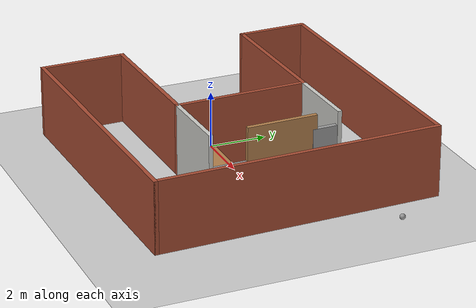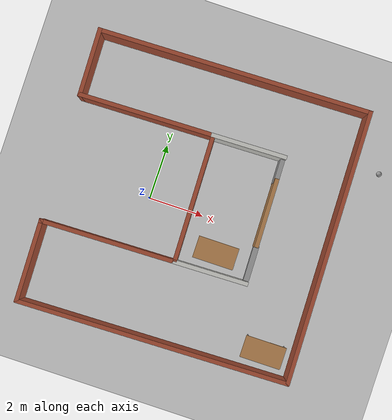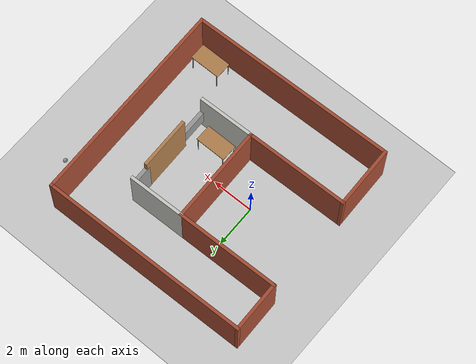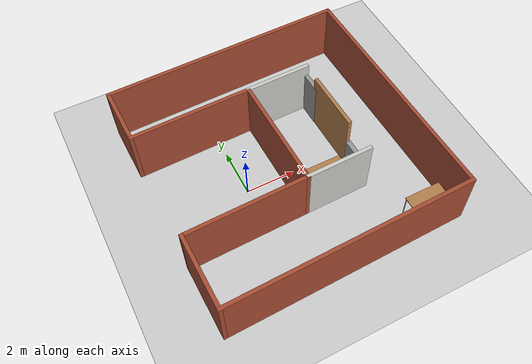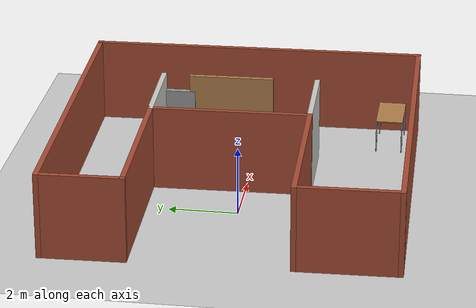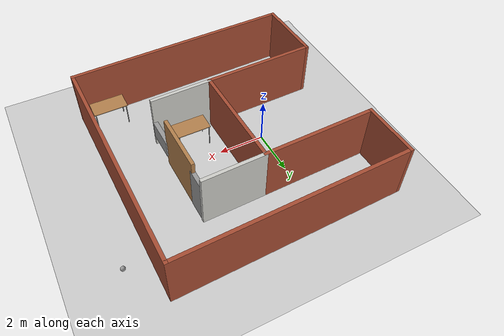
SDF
<sdf version="1.6">
 <world name="default">
  <plugin name="welcome" filename="libwelcome.so"/>
  <light name="sun" type="directional">
   <pose>0 0 10 0 -0 0</pose>
   <diffuse>0.8 0.8 0.8 1</diffuse>
   <specular>0.2 0.2 0.2 1</specular>
   <attenuation>
    <range>1000</range>
    <constant>0.9</constant>
    <linear>0.01</linear>
    <quadratic>0.001</quadratic>
   </attenuation>
   <direction>-0.5 0.1 -0.9</direction>
  </light>
  <model name="ground_plane">
   <static>1</static>
   <link name="link">
    <collision name="collision">
     <geometry><plane><normal>0 0 1</normal><size>100 100</size></plane></geometry>
     <surface>
      <contact><collide_bitmask>65535</collide_bitmask></contact>
      <friction><ode><mu>100</mu><mu2>50</mu2></ode></friction>
     </surface>
    </collision>
    <visual name="visual">
     <cast_shadows>0</cast_shadows>
     <geometry><plane><normal>0 0 1</normal><size>100 100</size></plane></geometry>
     <material>
      <script><uri>file://media/materials/scripts/gazebo.material</uri><name>Gazebo/Grey</name></script>
     </material>
    </visual>
   </link>
  </model>
  <gravity>0 0 -9.8</gravity>
  <magnetic_field>6e-06 2.3e-05 -4.2e-05</magnetic_field>
  <atmosphere type="adiabatic"/>
  <physics name="default_physics" default="0" type="ode">
   <max_step_size>0.001</max_step_size>
   <real_time_factor>1</real_time_factor>
   <real_time_update_rate>1000</real_time_update_rate>
  </physics>
  <scene><ambient>0.4 0.4 0.4 1</ambient><background>0.7 0.7 0.7 1</background><shadows>1</shadows></scene>
  <spherical_coordinates>
   <surface_model>EARTH_WGS84</surface_model>
   <latitude_deg>0</latitude_deg>
   <longitude_deg>0</longitude_deg>
   <elevation>0</elevation>
   <heading_deg>0</heading_deg>
  </spherical_coordinates>
  <model name="room">
   <pose>1.60544 0.182363 0 0 -0 1.59414</pose>
   <link name="Door_0">
    <collision name="Door_0_Collision">
     <geometry><box><size>0.9 0.17 2</size></box></geometry>
     <pose>0 0 1 0 -0 0</pose>
    </collision>
    <visual name="Door_0_Visual">
     <pose>0 0 1 0 -0 0</pose>
     <geometry><box><size>0.9 0.17 2</size></box></geometry>
     <material>
      <script><uri>file://media/materials/scripts/gazebo.material</uri><name>Gazebo/Grey</name></script>
     </material>
    </visual>
    <pose>2.07085 -2.49646 0 0 -0 0</pose>
   </link>
   <link name="Wall_0">
    <collision name="Wall_0_Collision">
     <geometry><box><size>10 0.15 2.5</size></box></geometry>
     <pose>0 0 1.25 0 -0 0</pose>
    </collision>
    <visual name="Wall_0_Visual">
     <pose>0 0 1.25 0 -0 0</pose>
     <geometry><box><size>10 0.15 2.5</size></box></geometry>
     <material>
      <script><uri>file://media/materials/scripts/gazebo.material</uri><name>Gazebo/Bricks</name></script>
      <ambient>1 1 1 1</ambient>
     </material>
     <meta><layer>0</layer></meta>
    </visual>
    <pose>-4.925 0 0 0 0 -1.5708</pose>
   </link>
   <link name="Wall_1">
    <collision name="Wall_1_Collision">
     <geometry><box><size>10 0.15 2.5</size></box></geometry>
     <pose>0 0 1.25 0 -0 0</pose>
    </collision>
    <visual name="Wall_1_Visual">
     <pose>0 0 1.25 0 -0 0</pose>
     <geometry><box><size>10 0.15 2.5</size></box></geometry>
     <material>
      <script><uri>file://media/materials/scripts/gazebo.material</uri><name>Gazebo/Bricks</name></script>
      <ambient>1 1 1 1</ambient>
     </material>
     <meta><layer>0</layer></meta>
    </visual>
    <pose>0 -4.925 0 0 -0 0</pose>
   </link>
   <link name="Wall_11">
    <collision name="Wall_11_Collision">
     <geometry><box><size>2.75 0.15 2.5</size></box></geometry>
     <pose>0 0 1.25 0 -0 0</pose>
    </collision>
    <visual name="Wall_11_Visual">
     <pose>0 0 1.25 0 -0 0</pose>
     <geometry><box><size>2.75 0.15 2.5</size></box></geometry>
     <material>
      <script><uri>file://media/materials/scripts/gazebo.material</uri><name>Gazebo/CeilingTiled</name></script>
      <ambient>0.996078 0.47451 0.0196078 1</ambient>
     </material>
     <meta><layer>0</layer></meta>
    </visual>
    <pose>2.575 -1.225 0 0 0 -1.5708</pose>
   </link>
   <link name="Wall_13">
    <collision name="Wall_13_Collision">
     <geometry><box><size>2.5 0.15 2.5</size></box></geometry>
     <pose>0 0 1.25 0 -0 0</pose>
    </collision>
    <visual name="Wall_13_Visual">
     <pose>0 0 1.25 0 -0 0</pose>
     <geometry><box><size>2.5 0.15 2.5</size></box></geometry>
     <material>
      <script><uri>file://media/materials/scripts/gazebo.material</uri><name>Gazebo/Wood</name></script>
      <ambient>1 1 1 1</ambient>
     </material>
     <meta><layer>0</layer></meta>
    </visual>
    <pose>0.532632 -2.49646 0 0 -0 0</pose>
   </link>
   <link name="Wall_2">
    <collision name="Wall_2_Collision">
     <geometry><box><size>10 0.15 2.5</size></box></geometry>
     <pose>0 0 1.25 0 -0 0</pose>
    </collision>
    <visual name="Wall_2_Visual">
     <pose>0 0 1.25 0 -0 0</pose>
     <geometry><box><size>10 0.15 2.5</size></box></geometry>
     <material>
      <script><uri>file://media/materials/scripts/gazebo.material</uri><name>Gazebo/Bricks</name></script>
      <ambient>1 1 1 1</ambient>
     </material>
     <meta><layer>0</layer></meta>
    </visual>
    <pose>4.925 0 0 0 -0 1.5708</pose>
   </link>
   <link name="Wall_3">
    <collision name="Wall_3_Collision">
     <geometry><box><size>2.5 0.15 2.5</size></box></geometry>
     <pose>0 0 1.25 0 -0 0</pose>
    </collision>
    <visual name="Wall_3_Visual">
     <pose>0 0 1.25 0 -0 0</pose>
     <geometry><box><size>2.5 0.15 2.5</size></box></geometry>
     <material>
      <script><uri>file://media/materials/scripts/gazebo.material</uri><name>Gazebo/Bricks</name></script>
      <ambient>1 1 1 1</ambient>
     </material>
     <meta><layer>0</layer></meta>
    </visual>
    <pose>3.75 4.925 0 0 -0 3.14159</pose>
   </link>
   <link name="Wall_4">
    <collision name="Wall_4_Collision">
     <geometry><box><size>5 0.15 2.5</size></box></geometry>
     <pose>0 0 1.25 0 -0 0</pose>
    </collision>
    <visual name="Wall_4_Visual">
     <pose>0 0 1.25 0 -0 0</pose>
     <geometry><box><size>5 0.15 2.5</size></box></geometry>
     <material>
      <script><uri>file://media/materials/scripts/gazebo.material</uri><name>Gazebo/Bricks</name></script>
      <ambient>1 1 1 1</ambient>
     </material>
     <meta><layer>0</layer></meta>
    </visual>
    <pose>2.575 2.5 0 0 0 -1.5708</pose>
   </link>
   <link name="Wall_5">
    <collision name="Wall_5_Collision">
     <geometry><box><size>4.75 0.15 2.5</size></box></geometry>
     <pose>0 0 1.25 0 -0 0</pose>
    </collision>
    <visual name="Wall_5_Visual">
     <pose>0 0 1.25 0 -0 0</pose>
     <geometry><box><size>4.75 0.15 2.5</size></box></geometry>
     <material>
      <script><uri>file://media/materials/scripts/gazebo.material</uri><name>Gazebo/Bricks</name></script>
      <ambient>1 1 1 1</ambient>
     </material>
     <meta><layer>0</layer></meta>
    </visual>
    <pose>0.275 0.075 0 0 -0 3.14159</pose>
   </link>
   <link name="Wall_6">
    <collision name="Wall_6_Collision">
     <geometry><box><size>5 0.15 2.5</size></box></geometry>
     <pose>0 0 1.25 0 -0 0</pose>
    </collision>
    <visual name="Wall_6_Visual">
     <pose>0 0 1.25 0 -0 0</pose>
     <geometry><box><size>5 0.15 2.5</size></box></geometry>
     <material>
      <script><uri>file://media/materials/scripts/gazebo.material</uri><name>Gazebo/Bricks</name></script>
      <ambient>1 1 1 1</ambient>
     </material>
     <meta><layer>0</layer></meta>
    </visual>
    <pose>-2.025 2.5 0 0 -0 1.5708</pose>
   </link>
   <link name="Wall_7">
    <collision name="Wall_7_Collision">
     <geometry><box><size>3.05 0.15 2.5</size></box></geometry>
     <pose>0 0 1.25 0 -0 0</pose>
    </collision>
    <visual name="Wall_7_Visual">
     <pose>0 0 1.25 0 -0 0</pose>
     <geometry><box><size>3.05 0.15 2.5</size></box></geometry>
     <material>
      <script><uri>file://media/materials/scripts/gazebo.material</uri><name>Gazebo/Bricks</name></script>
      <ambient>1 1 1 1</ambient>
     </material>
     <meta><layer>0</layer></meta>
    </visual>
    <pose>-3.475 4.925 0 0 -0 3.14159</pose>
   </link>
   <link name="Wall_9">
    <collision name="Wall_9_Collision">
     <geometry><box><size>2.75 0.15 2.5</size></box></geometry>
     <pose>0 0 1.25 0 -0 0</pose>
    </collision>
    <visual name="Wall_9_Visual">
     <pose>0 0 1.25 0 -0 0</pose>
     <geometry><box><size>2.75 0.15 2.5</size></box></geometry>
     <material>
      <script><uri>file://media/materials/scripts/gazebo.material</uri><name>Gazebo/CeilingTiled</name></script>
      <ambient>0.435294 0.796078 0.67451 1</ambient>
     </material>
     <meta><layer>0</layer></meta>
    </visual>
    <pose>-2.025 -1.225 0 0 0 -1.5708</pose>
   </link>
   <link name="Window_0">
    <collision name="Window_0_Collision">
     <geometry><box><size>1.3054 0.2 0.8</size></box></geometry>
     <pose>0 0 0.4 0 -0 0</pose>
    </collision>
    <visual name="Window_0_Visual">
     <pose>0 0 0.4 0 -0 0</pose>
     <geometry><box><size>1.3054 0.2 0.8</size></box></geometry>
     <material>
      <script><uri>file://media/materials/scripts/gazebo.material</uri><name>Gazebo/Grey</name></script>
     </material>
    </visual>
    <pose>-1.29407 -2.52306 0.5 0 -0 0</pose>
   </link>
   <static>1</static>
  </model>
  <model name="table">
   <static>1</static>
   <link name="link">
    <collision name="surface">
     <pose>0 0 1 0 -0 0</pose>
     <geometry><box><size>1.5 0.8 0.03</size></box></geometry>
     <surface><friction><ode><mu>0.6</mu><mu2>0.6</mu2></ode></friction></surface>
    </collision>
    <visual name="visual1">
     <pose>0 0 1 0 -0 0</pose>
     <geometry><box><size>1.5 0.8 0.03</size></box></geometry>
     <material>
      <script><uri>file://media/materials/scripts/gazebo.material</uri><name>Gazebo/Wood</name></script>
     </material>
    </visual>
    <collision name="front_left_leg">
     <pose>0.68 0.38 0.5 0 -0 0</pose>
     <geometry><cylinder><radius>0.02</radius><length>1</length></cylinder></geometry>
    </collision>
    <visual name="front_left_leg">
     <pose>0.68 0.38 0.5 0 -0 0</pose>
     <geometry><cylinder><radius>0.02</radius><length>1</length></cylinder></geometry>
     <material>
      <script><uri>file://media/materials/scripts/gazebo.material</uri><name>Gazebo/Grey</name></script>
     </material>
    </visual>
    <collision name="front_right_leg">
     <pose>0.68 -0.38 0.5 0 -0 0</pose>
     <geometry><cylinder><radius>0.02</radius><length>1</length></cylinder></geometry>
    </collision>
    <visual name="front_right_leg">
     <pose>0.68 -0.38 0.5 0 -0 0</pose>
     <geometry><cylinder><radius>0.02</radius><length>1</length></cylinder></geometry>
     <material>
      <script><uri>file://media/materials/scripts/gazebo.material</uri><name>Gazebo/Grey</name></script>
     </material>
    </visual>
    <collision name="back_right_leg">
     <pose>-0.68 -0.38 0.5 0 -0 0</pose>
     <geometry><cylinder><radius>0.02</radius><length>1</length></cylinder></geometry>
    </collision>
    <visual name="back_right_leg">
     <pose>-0.68 -0.38 0.5 0 -0 0</pose>
     <geometry><cylinder><radius>0.02</radius><length>1</length></cylinder></geometry>
     <material>
      <script><uri>file://media/materials/scripts/gazebo.material</uri><name>Gazebo/Grey</name></script>
     </material>
    </visual>
    <collision name="back_left_leg">
     <pose>-0.68 0.38 0.5 0 -0 0</pose>
     <geometry><cylinder><radius>0.02</radius><length>1</length></cylinder></geometry>
    </collision>
    <visual name="back_left_leg">
     <pose>-0.68 0.38 0.5 0 -0 0</pose>
     <geometry><cylinder><radius>0.02</radius><length>1</length></cylinder></geometry>
     <material>
      <script><uri>file://media/materials/scripts/gazebo.material</uri><name>Gazebo/Grey</name></script>
     </material>
    </visual>
   </link>
   <pose>2.86036 -1.10214 0 0 -0 0</pose>
  </model>
  <model name="table_0">
   <static>1</static>
   <link name="link">
    <collision name="surface">
     <pose>0 0 1 0 -0 0</pose>
     <geometry><box><size>1.5 0.8 0.03</size></box></geometry>
     <surface><friction><ode><mu>0.6</mu><mu2>0.6</mu2></ode></friction></surface>
    </collision>
    <visual name="visual1">
     <pose>0 0 1 0 -0 0</pose>
     <geometry><box><size>1.5 0.8 0.03</size></box></geometry>
     <material>
      <script><uri>file://media/materials/scripts/gazebo.material</uri><name>Gazebo/Wood</name></script>
     </material>
    </visual>
    <collision name="front_left_leg">
     <pose>0.68 0.38 0.5 0 -0 0</pose>
     <geometry><cylinder><radius>0.02</radius><length>1</length></cylinder></geometry>
    </collision>
    <visual name="front_left_leg">
     <pose>0.68 0.38 0.5 0 -0 0</pose>
     <geometry><cylinder><radius>0.02</radius><length>1</length></cylinder></geometry>
     <material>
      <script><uri>file://media/materials/scripts/gazebo.material</uri><name>Gazebo/Grey</name></script>
     </material>
    </visual>
    <collision name="front_right_leg">
     <pose>0.68 -0.38 0.5 0 -0 0</pose>
     <geometry><cylinder><radius>0.02</radius><length>1</length></cylinder></geometry>
    </collision>
    <visual name="front_right_leg">
     <pose>0.68 -0.38 0.5 0 -0 0</pose>
     <geometry><cylinder><radius>0.02</radius><length>1</length></cylinder></geometry>
     <material>
      <script><uri>file://media/materials/scripts/gazebo.material</uri><name>Gazebo/Grey</name></script>
     </material>
    </visual>
    <collision name="back_right_leg">
     <pose>-0.68 -0.38 0.5 0 -0 0</pose>
     <geometry><cylinder><radius>0.02</radius><length>1</length></cylinder></geometry>
    </collision>
    <visual name="back_right_leg">
     <pose>-0.68 -0.38 0.5 0 -0 0</pose>
     <geometry><cylinder><radius>0.02</radius><length>1</length></cylinder></geometry>
     <material>
      <script><uri>file://media/materials/scripts/gazebo.material</uri><name>Gazebo/Grey</name></script>
     </material>
    </visual>
    <collision name="back_left_leg">
     <pose>-0.68 0.38 0.5 0 -0 0</pose>
     <geometry><cylinder><radius>0.02</radius><length>1</length></cylinder></geometry>
    </collision>
    <visual name="back_left_leg">
     <pose>-0.68 0.38 0.5 0 -0 0</pose>
     <geometry><cylinder><radius>0.02</radius><length>1</length></cylinder></geometry>
     <material>
      <script><uri>file://media/materials/scripts/gazebo.material</uri><name>Gazebo/Grey</name></script>
     </material>
    </visual>
   </link>
   <pose>5.56028 -3.9158 0 0 -0 0</pose>
  </model>
  <model name="my_ball">
   <link name="link">
    <inertial>
     <mass>1</mass>
     <inertia><ixx>0.1</ixx><ixy>0</ixy><ixz>0</ixz><iyy>0.1</iyy><iyz>0</iyz><izz>0.1</izz></inertia>
    </inertial>
    <visual name="visual">
     <geometry><sphere><radius>0.1</radius></sphere></geometry>
     <material>
      <script><name>Gazebo/Grey</name><uri>file://media/materials/scripts/gazebo.material</uri></script>
      <shader type="pixel"><normal_map>__default__</normal_map></shader>
      <ambient>1 1 1 1</ambient>
      <diffuse>1 1 1 1</diffuse>
      <specular>1 1 1 1</specular>
      <emissive>1 1 1 1</emissive>
     </material>
    </visual>
    <collision name="collision">
     <geometry><sphere><radius>0.1</radius></sphere></geometry>
     <surface>
      <friction>
       <ode><mu>1</mu><mu2>1</mu2><fdir1>0 0 0</fdir1><slip1>0</slip1><slip2>0</slip2></ode>
       <torsional>
        <coefficient>1</coefficient>
        <patch_radius>0</patch_radius>
        <surface_radius>0</surface_radius>
        <use_patch_radius>1</use_patch_radius>
        <ode><slip>0</slip></ode>
       </torsional>
      </friction>
      <bounce><restitution_coefficient>0</restitution_coefficient><threshold>1e+06</threshold></bounce>
      <contact>
       <collide_without_contact>0</collide_without_contact>
       <collide_without_contact_bitmask>1</collide_without_contact_bitmask>
       <collide_bitmask>1</collide_bitmask>
       <ode>
        <soft_cfm>0</soft_cfm>
        <soft_erp>0.2</soft_erp>
        <kp>1e+13</kp>
        <kd>1</kd>
        <max_vel>0.01</max_vel>
        <min_depth>0</min_depth>
       </ode>
       <bullet>
        <split_impulse>1</split_impulse>
        <split_impulse_penetration_threshold>-0.01</split_impulse_penetration_threshold>
        <soft_cfm>0</soft_cfm>
        <soft_erp>0.2</soft_erp>
        <kp>1e+13</kp>
        <kd>1</kd>
       </bullet>
      </contact>
     </surface>
    </collision>
   </link>
   <static>0</static>
   <pose>7.53677 3.42628 0.1 0 -0 0</pose>
  </model>
  <plugin filename="libcollision_map_creator.so" name="collision_map_creator"/>
 </world>
</sdf>
